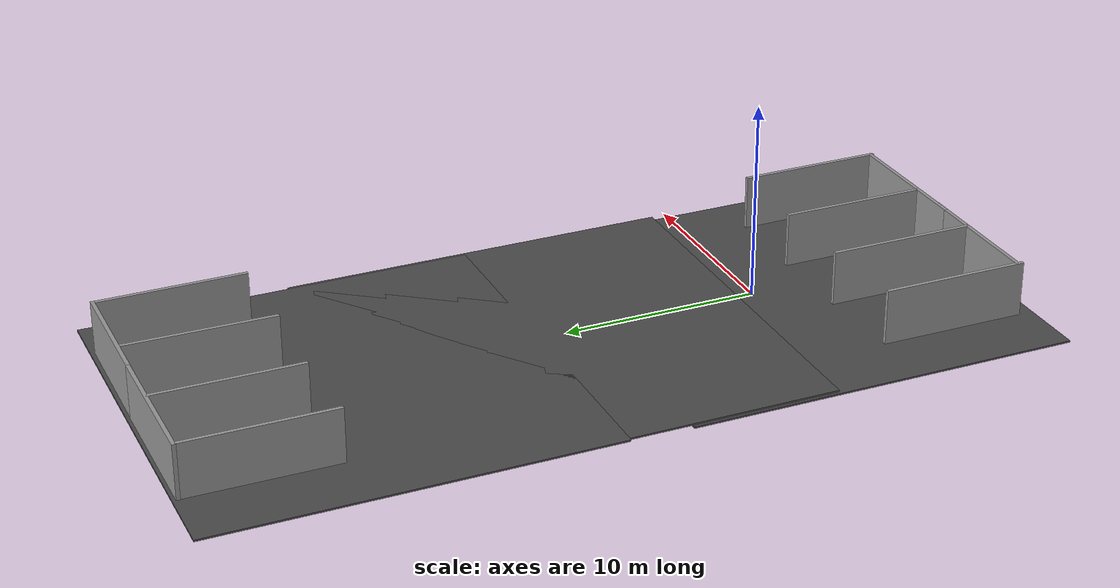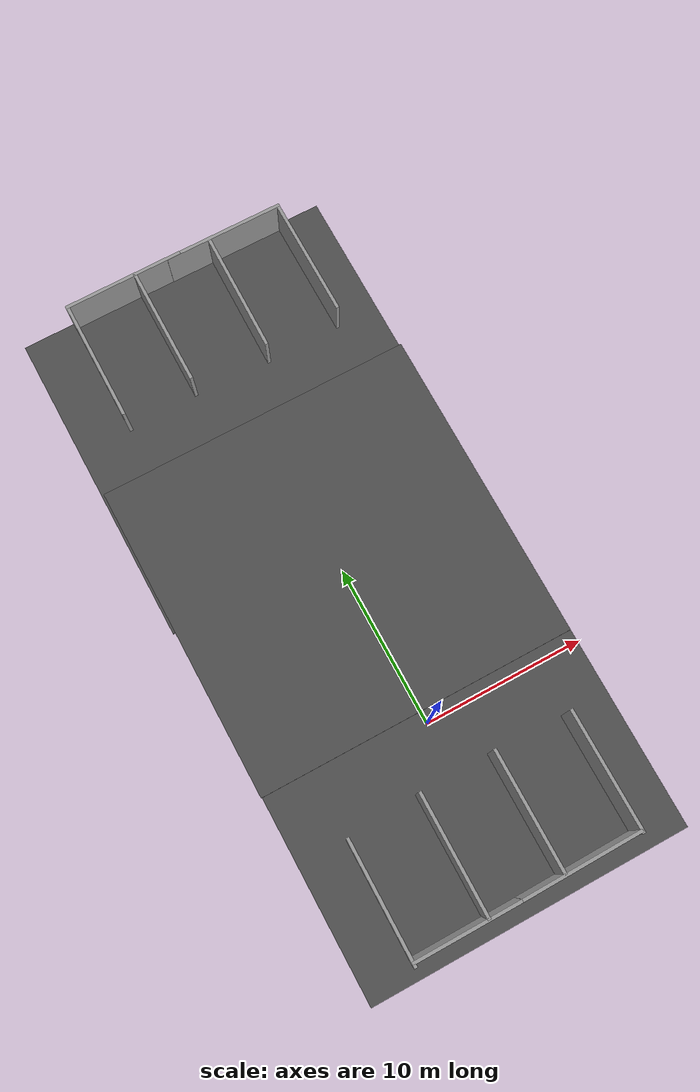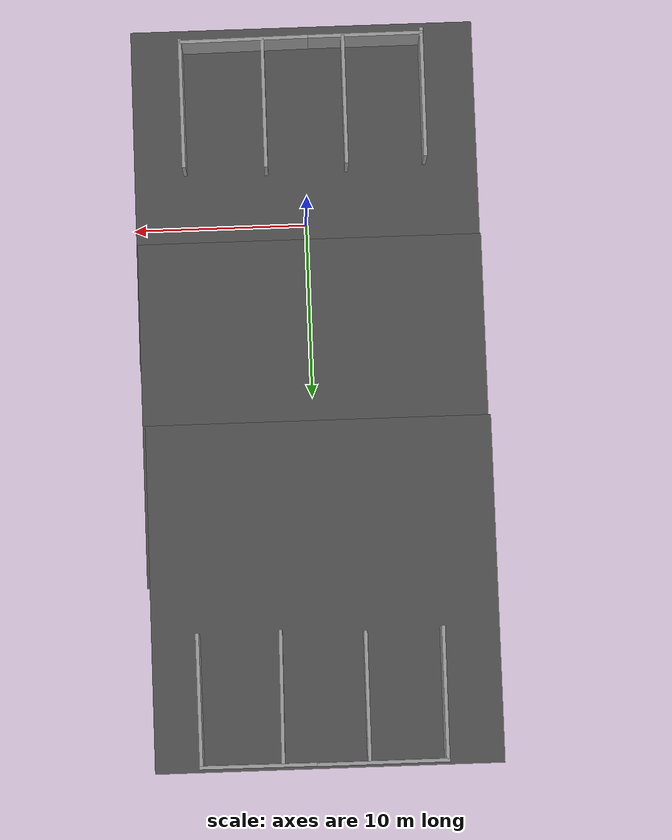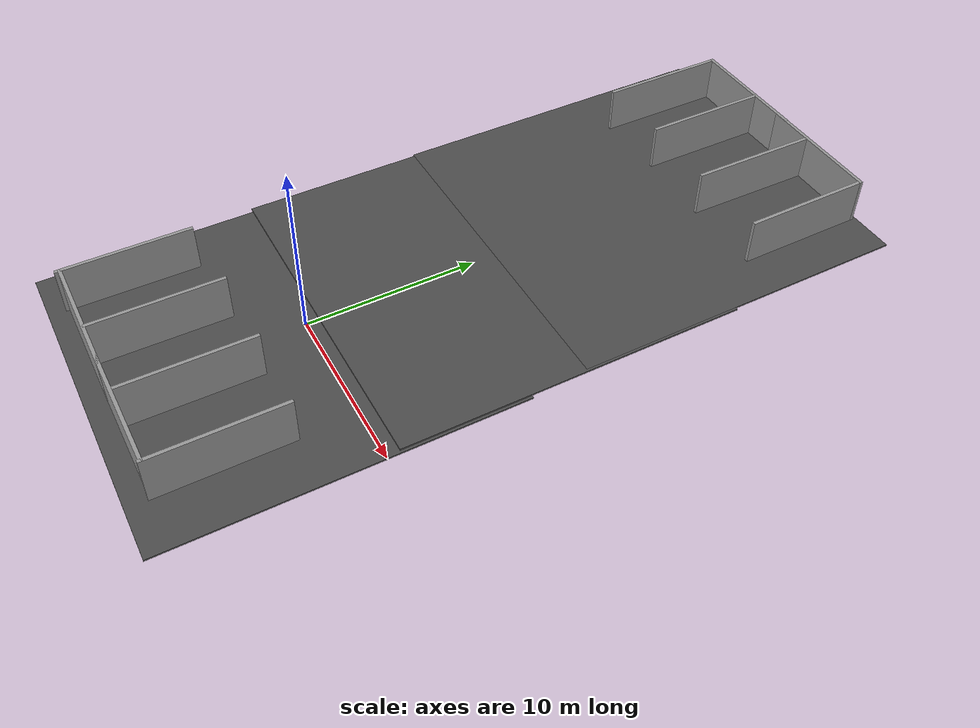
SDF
<sdf version="1.6">
 <world name="default">
  <gravity>0 0 -9.8</gravity>
  <physics name="default_physics" default="0" type="ode">
   <max_step_size>0.001</max_step_size>
   <real_time_factor>1</real_time_factor>
   <real_time_update_rate>1000</real_time_update_rate>
  </physics>
  <light name="Warehouse_CeilingLight_003" type="point">
   <pose>0 0 9 0 -0 0</pose>
   <diffuse>0.5 0.5 0.5 1</diffuse>
   <specular>0.2 0.2 0.2 1</specular>
   <attenuation>
    <range>80</range>
    <constant>0.3</constant>
    <linear>0.01</linear>
    <quadratic>0.001</quadratic>
   </attenuation>
   <direction>0.1 0.1 -1</direction>
  </light>
  <magnetic_field>6e-06 2.3e-05 -4.2e-05</magnetic_field>
  <atmosphere type="adiabatic"/>
  <scene><ambient>0.4 0.4 0.4 1</ambient><background>0.7 0.7 0.7 1</background><shadows>1</shadows></scene>
  <spherical_coordinates>
   <surface_model>EARTH_WGS84</surface_model>
   <latitude_deg>0</latitude_deg>
   <longitude_deg>0</longitude_deg>
   <elevation>0</elevation>
   <heading_deg>0</heading_deg>
  </spherical_coordinates>
  <model name="grey_wall_clone">
   <static>1</static>
   <link name="link">
    <pose>0 0 1.4 0 -0 0</pose>
    <collision name="collision"><geometry><box><size>7.5 0.2 2.8</size></box></geometry></collision>
    <visual name="visual">
     <cast_shadows>0</cast_shadows>
     <geometry><box><size>7.5 0.2 2.8</size></box></geometry>
     <material>
      <script>
       <uri>model://grey_wall/materials/scripts</uri>
       <uri>model://grey_wall/materials/textures</uri>
       <name>vrc/grey_wall</name>
      </script>
     </material>
    </visual>
   </link>
   <pose>-2.44393 -6.89506 0 0 0 -1.57405</pose>
  </model>
  <model name="grey_wall_clone_clone">
   <static>1</static>
   <link name="link">
    <pose>0 0 1.4 0 -0 0</pose>
    <collision name="collision"><geometry><box><size>7.5 0.2 2.8</size></box></geometry></collision>
    <visual name="visual">
     <cast_shadows>0</cast_shadows>
     <geometry><box><size>7.5 0.2 2.8</size></box></geometry>
     <material>
      <script>
       <uri>model://grey_wall/materials/scripts</uri>
       <uri>model://grey_wall/materials/textures</uri>
       <name>vrc/grey_wall</name>
      </script>
     </material>
    </visual>
   </link>
   <pose>2.21072 -6.83062 0 0 0 -1.57278</pose>
  </model>
  <model name="grey_wall_clone_clone_0">
   <static>1</static>
   <link name="link">
    <pose>0 0 1.4 0 -0 0</pose>
    <collision name="collision"><geometry><box><size>7.5 0.2 2.8</size></box></geometry></collision>
    <visual name="visual">
     <cast_shadows>0</cast_shadows>
     <geometry><box><size>7.5 0.2 2.8</size></box></geometry>
     <material>
      <script>
       <uri>model://grey_wall/materials/scripts</uri>
       <uri>model://grey_wall/materials/textures</uri>
       <name>vrc/grey_wall</name>
      </script>
     </material>
    </visual>
   </link>
   <pose>-3.34076 -10.6291 0 0 0 -3.14005</pose>
  </model>
  <model name="grey_wall_clone_clone_clone">
   <static>1</static>
   <link name="link">
    <pose>0 0 1.4 0 -0 0</pose>
    <collision name="collision"><geometry><box><size>7.5 0.2 2.8</size></box></geometry></collision>
    <visual name="visual">
     <cast_shadows>0</cast_shadows>
     <geometry><box><size>7.5 0.2 2.8</size></box></geometry>
     <material>
      <script>
       <uri>model://grey_wall/materials/scripts</uri>
       <uri>model://grey_wall/materials/textures</uri>
       <name>vrc/grey_wall</name>
      </script>
     </material>
    </visual>
   </link>
   <pose>3.29634 -10.5818 0 0 -0 0.010746</pose>
  </model>
  <model name="grey_wall_clone_clone_clone_clone">
   <static>1</static>
   <link name="link">
    <pose>0 0 1.4 0 -0 0</pose>
    <collision name="collision"><geometry><box><size>7.5 0.2 2.8</size></box></geometry></collision>
    <visual name="visual">
     <cast_shadows>0</cast_shadows>
     <geometry><box><size>7.5 0.2 2.8</size></box></geometry>
     <material>
      <script>
       <uri>model://grey_wall/materials/scripts</uri>
       <uri>model://grey_wall/materials/textures</uri>
       <name>vrc/grey_wall</name>
      </script>
     </material>
    </visual>
   </link>
   <pose>6.94802 -6.96222 0 0 -0 1.57327</pose>
  </model>
  <model name="grey_wall_clone_clone_1">
   <static>1</static>
   <link name="link">
    <pose>0 0 1.4 0 -0 0</pose>
    <collision name="collision"><geometry><box><size>7.5 0.2 2.8</size></box></geometry></collision>
    <visual name="visual">
     <cast_shadows>0</cast_shadows>
     <geometry><box><size>7.5 0.2 2.8</size></box></geometry>
     <material>
      <script>
       <uri>model://grey_wall/materials/scripts</uri>
       <uri>model://grey_wall/materials/textures</uri>
       <name>vrc/grey_wall</name>
      </script>
     </material>
    </visual>
   </link>
   <pose>-6.98999 -7.17166 0 0 0 -1.57405</pose>
  </model>
  <model name="grey_wall_clone_clone_clone_0">
   <static>1</static>
   <link name="link">
    <pose>0 0 1.4 0 -0 0</pose>
    <collision name="collision"><geometry><box><size>7.5 0.2 2.8</size></box></geometry></collision>
    <visual name="visual">
     <cast_shadows>0</cast_shadows>
     <geometry><box><size>7.5 0.2 2.8</size></box></geometry>
     <material>
      <script>
       <uri>model://grey_wall/materials/scripts</uri>
       <uri>model://grey_wall/materials/textures</uri>
       <name>vrc/grey_wall</name>
      </script>
     </material>
    </visual>
   </link>
   <pose>2.33781 27.2284 0 0.000827 3e-05 -1.58345</pose>
  </model>
  <model name="grey_wall_clone_clone_clone_clone_clone">
   <static>1</static>
   <link name="link">
    <pose>0 0 1.4 0 -0 0</pose>
    <collision name="collision"><geometry><box><size>7.5 0.2 2.8</size></box></geometry></collision>
    <visual name="visual">
     <cast_shadows>0</cast_shadows>
     <geometry><box><size>7.5 0.2 2.8</size></box></geometry>
     <material>
      <script>
       <uri>model://grey_wall/materials/scripts</uri>
       <uri>model://grey_wall/materials/textures</uri>
       <name>vrc/grey_wall</name>
      </script>
     </material>
    </visual>
   </link>
   <pose>7.00632 27.2755 0 0 -0 1.57327</pose>
  </model>
  <model name="grey_wall_clone_clone_1_clone">
   <static>1</static>
   <link name="link">
    <pose>0 0 1.4 0 -0 0</pose>
    <collision name="collision"><geometry><box><size>7.5 0.2 2.8</size></box></geometry></collision>
    <visual name="visual">
     <cast_shadows>0</cast_shadows>
     <geometry><box><size>7.5 0.2 2.8</size></box></geometry>
     <material>
      <script>
       <uri>model://grey_wall/materials/scripts</uri>
       <uri>model://grey_wall/materials/textures</uri>
       <name>vrc/grey_wall</name>
      </script>
     </material>
    </visual>
   </link>
   <pose>-6.9112 27.2919 0 0 0 -1.57405</pose>
  </model>
  <model name="grey_wall_clone_clone_2">
   <static>1</static>
   <link name="link">
    <pose>0 0 1.4 0 -0 0</pose>
    <collision name="collision"><geometry><box><size>7.5 0.2 2.8</size></box></geometry></collision>
    <visual name="visual">
     <cast_shadows>0</cast_shadows>
     <geometry><box><size>7.5 0.2 2.8</size></box></geometry>
     <material>
      <script>
       <uri>model://grey_wall/materials/scripts</uri>
       <uri>model://grey_wall/materials/textures</uri>
       <name>vrc/grey_wall</name>
      </script>
     </material>
    </visual>
   </link>
   <pose>-2.51008 27.4289 0 0 0 -1.57405</pose>
  </model>
  <model name="grey_wall_clone_clone_0_clone">
   <static>1</static>
   <link name="link">
    <pose>0 0 1.4 0 -0 0</pose>
    <collision name="collision"><geometry><box><size>7.5 0.2 2.8</size></box></geometry></collision>
    <visual name="visual">
     <cast_shadows>0</cast_shadows>
     <geometry><box><size>7.5 0.2 2.8</size></box></geometry>
     <material>
      <script>
       <uri>model://grey_wall/materials/scripts</uri>
       <uri>model://grey_wall/materials/textures</uri>
       <name>vrc/grey_wall</name>
      </script>
     </material>
    </visual>
   </link>
   <pose>-3.26515 31.105 0 0 0 -3.14005</pose>
  </model>
  <model name="grey_wall_clone_clone_clone_0_clone">
   <static>1</static>
   <link name="link">
    <pose>0 0 1.4 0 -0 0</pose>
    <collision name="collision"><geometry><box><size>7.5 0.2 2.8</size></box></geometry></collision>
    <visual name="visual">
     <cast_shadows>0</cast_shadows>
     <geometry><box><size>7.5 0.2 2.8</size></box></geometry>
     <material>
      <script>
       <uri>model://grey_wall/materials/scripts</uri>
       <uri>model://grey_wall/materials/textures</uri>
       <name>vrc/grey_wall</name>
      </script>
     </material>
    </visual>
   </link>
   <pose>3.35521 31.0805 0 2.3e-05 -0.000827 -0.00425</pose>
  </model>
  <model name="asphalt_plane">
   <static>1</static>
   <link name="link">
    <collision name="collision"><geometry><box><size>20 20 0.1</size></box></geometry></collision>
    <visual name="visual">
     <cast_shadows>0</cast_shadows>
     <geometry><box><size>20 20 0.1</size></box></geometry>
     <material>
      <script>
       <uri>model://asphalt_plane/materials/scripts</uri>
       <uri>model://asphalt_plane/materials/textures</uri>
       <name>vrc/asphalt</name>
      </script>
     </material>
    </visual>
   </link>
   <pose>-0.276459 21.3735 0 0 -0 0</pose>
  </model>
  <model name="asphalt_plane_clone">
   <static>1</static>
   <link name="link">
    <collision name="collision"><geometry><box><size>20 20 0.1</size></box></geometry></collision>
    <visual name="visual">
     <cast_shadows>0</cast_shadows>
     <geometry><box><size>20 20 0.1</size></box></geometry>
     <material>
      <script>
       <uri>model://asphalt_plane/materials/scripts</uri>
       <uri>model://asphalt_plane/materials/textures</uri>
       <name>vrc/asphalt</name>
      </script>
     </material>
    </visual>
   </link>
   <pose>-0.13717 10.7691 0 0 -0 0</pose>
  </model>
  <model name="asphalt_plane_clone_clone">
   <static>1</static>
   <link name="link">
    <collision name="collision"><geometry><box><size>20 20 0.1</size></box></geometry></collision>
    <visual name="visual">
     <cast_shadows>0</cast_shadows>
     <geometry><box><size>20 20 0.1</size></box></geometry>
     <material>
      <script>
       <uri>model://asphalt_plane/materials/scripts</uri>
       <uri>model://asphalt_plane/materials/textures</uri>
       <name>vrc/asphalt</name>
      </script>
     </material>
    </visual>
   </link>
   <pose>-0.085929 -1.8598 -0.220345 0 -0 0</pose>
  </model>
 </world>
</sdf>
